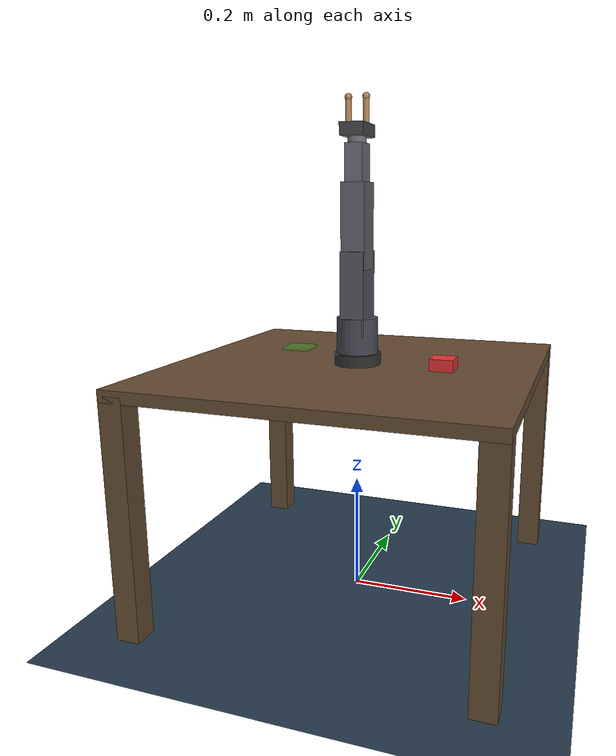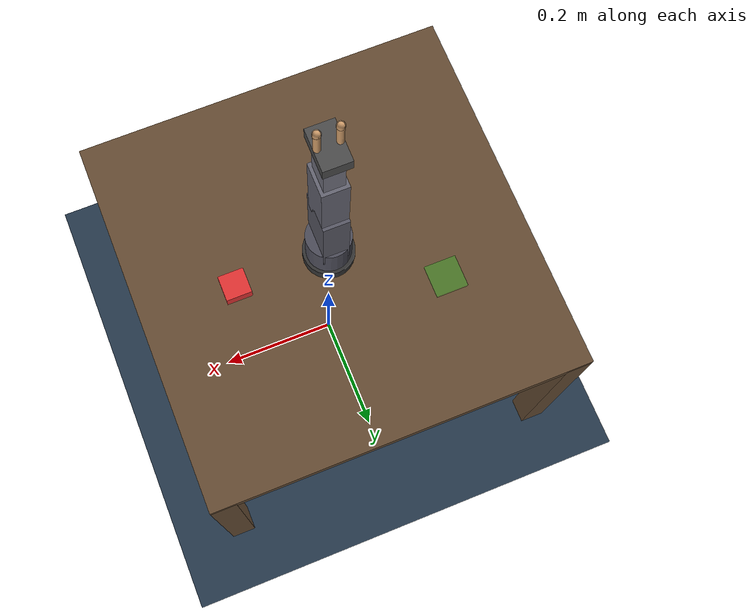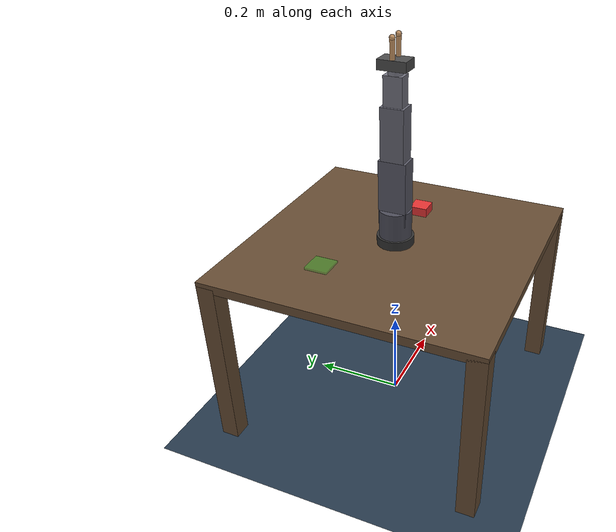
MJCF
<mujoco model="so_arm100_ido">
  <compiler angle="radian" coordinate="local"/>

  <option timestep="0.002" gravity="0 0 -9.81"/>

  <default>
    <joint type="hinge" damping="0.15" armature="0.01" limited="true"/>
    <geom type="mesh" rgba="0.5 0.5 0.5 1"/>
    <motor ctrlrange="-1 1" gear="50"/>
    <position kp="120" kv="15" ctrlrange="-3.14 3.14" gear="50"/>
  </default>

  <asset>
    <!-- Arm links -->
    <mesh name="base_link" file="" scale="1 1 1"/>
    <mesh name="rotation_link" file="" scale="1 1 1"/>
    <mesh name="pitch_link" file="" scale="1 1 1"/>
    <mesh name="elbow_link" file="" scale="1 1 1"/>
    <mesh name="wrist_pitch_link" file="" scale="1 1 1"/>
    <mesh name="wrist_roll_link" file="" scale="1 1 1"/>
    <mesh name="gripper_base" file="" scale="1 1 1"/>
    <mesh name="finger_left" file="" scale="1 1 1"/>
    <mesh name="finger_right" file="" scale="1 1 1"/>

    <texture name="grid" type="2d" builtin="checker" rgb1="0.2 0.3 0.4" rgb2="0.1 0.15 0.2" width="512" height="512"/>
    <material name="grid_mat" texture="grid" texrepeat="8 8" reflectance="0.1"/>
  </asset>

  <visual>
    <headlight diffuse="0.6 0.6 0.6" ambient="0.3 0.3 0.3" specular="0 0 0"/>
    <rgba haze="0.15 0.18 0.21 1"/>
    <global azimuth="120" elevation="-20"/>
  </visual>

  <worldbody>
    <!-- Floor -->
    <geom name="floor" type="plane" size="2 2 0.1" material="grid_mat" friction="0.8 0.05 0.01"/>

    <!-- Lighting -->
    <light name="light1" pos="0.5 0.5 1.5" dir="-0.5 -0.5 -1.5" diffuse="0.8 0.8 0.8"/>
    <light name="light2" pos="-0.5 -0.5 1.5" dir="0.5 0.5 -1.5" diffuse="0.4 0.4 0.4"/>

    <!-- Table surface -->
    <body name="table" pos="0 0 0">
      <geom name="table_top" type="box" size="0.3 0.3 0.01" pos="0 0 0.4" rgba="0.4 0.3 0.2 1"/>
      <geom name="table_leg1" type="box" size="0.02 0.02 0.2" pos="0.28 0.28 0.2" rgba="0.4 0.3 0.2 1"/>
      <geom name="table_leg2" type="box" size="0.02 0.02 0.2" pos="-0.28 0.28 0.2" rgba="0.4 0.3 0.2 1"/>
      <geom name="table_leg3" type="box" size="0.02 0.02 0.2" pos="0.28 -0.28 0.2" rgba="0.4 0.3 0.2 1"/>
      <geom name="table_leg4" type="box" size="0.02 0.02 0.2" pos="-0.28 -0.28 0.2" rgba="0.4 0.3 0.2 1"/>
    </body>

    <!-- SO-ARM100 Robot Arm -->
    <body name="arm_base" pos="0 0 0.41">
      <!-- Base mount (fixed to table) -->
      <geom name="base_geom" type="cylinder" size="0.04 0.02" rgba="0.2 0.2 0.2 1"/>

      <!-- Joint 1: Rotation (base yaw) -->
      <body name="rotation_link" pos="0 0 0.02">
        <joint name="Rotation" type="hinge" axis="0 0 1" range="-3.14 3.14"/>
        <geom name="rotation_geom" type="cylinder" size="0.035 0.03" pos="0 0 0.03" rgba="0.3 0.3 0.35 1"/>

        <!-- Joint 2: Pitch (shoulder) -->
        <body name="pitch_link" pos="0 0 0.06">
          <joint name="Pitch" type="hinge" axis="0 1 0" range="-1.57 1.57"/>
          <geom name="pitch_geom" type="box" size="0.02 0.03 0.07" pos="0 0 0.04" rgba="0.35 0.35 0.4 1"/>

          <!-- Joint 3: Elbow -->
          <body name="elbow_link" pos="0 0 0.11">
            <joint name="Elbow" type="hinge" axis="0 1 0" range="-1.57 1.57"/>
            <geom name="elbow_geom" type="box" size="0.02 0.025 0.07" pos="0 0 0.04" rgba="0.4 0.4 0.45 1"/>

            <!-- Joint 4: Wrist Pitch -->
            <body name="wrist_pitch_link" pos="0 0 0.11">
              <joint name="Wrist_Pitch" type="hinge" axis="0 1 0" range="-1.57 1.57"/>
              <geom name="wrist_pitch_geom" type="box" size="0.015 0.02 0.04" pos="0 0 0.02" rgba="0.45 0.45 0.5 1"/>

              <!-- Joint 5: Wrist Roll -->
              <body name="wrist_roll_link" pos="0 0 0.05">
                <joint name="Wrist_Roll" type="hinge" axis="0 0 1" range="-3.14 3.14"/>
                <geom name="wrist_roll_geom" type="cylinder" size="0.015 0.02" rgba="0.5 0.5 0.55 1"/>

                <!-- Gripper Base -->
                <body name="gripper_base" pos="0 0 0.03">
                  <geom name="gripper_base_geom" type="box" size="0.02 0.03 0.01" rgba="0.3 0.3 0.3 1"/>

                  <!-- Left Finger (sentient) -->
                  <body name="finger_left" pos="0.015 0 0.01">
                    <joint name="Gripper_Left" type="hinge" axis="0 1 0" range="-0.5 0.5"/>
                    <geom name="finger_left_geom" type="capsule" fromto="0 0 0 0 0 0.04" size="0.005" rgba="0.8 0.6 0.4 1"/>
                    <site name="touch_left" type="sphere" size="0.006" pos="0 0 0.04" rgba="0.9 0.7 0.5 0.5"/>
                  </body>

                  <!-- Right Finger (sentient) -->
                  <body name="finger_right" pos="-0.015 0 0.01">
                    <joint name="Gripper_Right" type="hinge" axis="0 1 0" range="-0.5 0.5"/>
                    <geom name="finger_right_geom" type="capsule" fromto="0 0 0 0 0 0.04" size="0.005" rgba="0.8 0.6 0.4 1"/>
                    <site name="touch_right" type="sphere" size="0.006" pos="0 0 0.04" rgba="0.9 0.7 0.5 0.5"/>
                  </body>
                </body>
              </body>
            </body>
          </body>
        </body>
      </body>
    </body>

    <!-- Target cube for pick-and-place -->
    <body name="target_cube" pos="0.15 0 0.41">
      <freejoint/>
      <geom name="cube_geom" type="box" size="0.02 0.02 0.02" rgba="0.9 0.2 0.2 1" friction="1.0 0.05 0.01"/>
    </body>

    <!-- Goal position marker -->
    <body name="goal_marker" pos="-0.15 0.1 0.41">
      <geom name="goal_geom" type="box" size="0.025 0.025 0.005" rgba="0.1 0.9 0.1 0.3"/>
    </body>

    <!-- Camera -->
    <camera name="front_cam" pos="0.5 -0.5 0.8" quat="0.5 0.5 0.5 0.5" fovy="45"/>
    <camera name="side_cam" pos="0.6 0 0.5" quat="0.7 0 0.7 0" fovy="45"/>
    <camera name="top_cam" pos="0 0 1.0" quat="0 0 0 1" fovy="45"/>
  </worldbody>

  <!-- Actuators: ST3215 servos (gear=50 matches 0.05 N·m) -->
  <actuator>
    <position name="Rotation"     joint="Rotation"     kp="120" kv="15" ctrlrange="-3.14 3.14" gear="50"/>
    <position name="Pitch"        joint="Pitch"         kp="120" kv="15" ctrlrange="-1.57 1.57" gear="50"/>
    <position name="Elbow"        joint="Elbow"         kp="100" kv="12" ctrlrange="-1.57 1.57" gear="50"/>
    <position name="Wrist_Pitch"  joint="Wrist_Pitch"   kp="80"  kv="10" ctrlrange="-1.57 1.57" gear="50"/>
    <position name="Wrist_Roll"   joint="Wrist_Roll"    kp="80"  kv="10" ctrlrange="-3.14 3.14" gear="50"/>
    <position name="Gripper_Left"  joint="Gripper_Left"  kp="50"  kv="8"  ctrlrange="-0.5 0.5"   gear="30"/>
    <position name="Gripper_Right" joint="Gripper_Right" kp="50"  kv="8"  ctrlrange="-0.5 0.5"   gear="30"/>
  </actuator>

  <!-- Sensors -->
  <sensor>
    <!-- Joint positions -->
    <jointpos name="jp_Rotation"     joint="Rotation"/>
    <jointpos name="jp_Pitch"        joint="Pitch"/>
    <jointpos name="jp_Elbow"        joint="Elbow"/>
    <jointpos name="jp_Wrist_Pitch"  joint="Wrist_Pitch"/>
    <jointpos name="jp_Wrist_Roll"   joint="Wrist_Roll"/>
    <jointpos name="jp_Gripper_Left"  joint="Gripper_Left"/>
    <jointpos name="jp_Gripper_Right" joint="Gripper_Right"/>

    <!-- Joint velocities -->
    <jointvel name="jv_Rotation"     joint="Rotation"/>
    <jointvel name="jv_Pitch"        joint="Pitch"/>
    <jointvel name="jv_Elbow"        joint="Elbow"/>
    <jointvel name="jv_Wrist_Pitch"  joint="Wrist_Pitch"/>
    <jointvel name="jv_Wrist_Roll"   joint="Wrist_Roll"/>
    <jointvel name="jv_Gripper_Left"  joint="Gripper_Left"/>
    <jointvel name="jv_Gripper_Right" joint="Gripper_Right"/>

    <!-- Touch sensors (sentient finger) -->
    <touch name="touch_left" site="touch_left"/>
    <touch name="touch_right" site="touch_right"/>
  </sensor>

  <!-- Exclusions: prevent self-collision at gripper -->
  <contact>
    <pair geom1="finger_left_geom" geom2="finger_right_geom"/>
    <pair geom1="gripper_base_geom" geom2="finger_left_geom"/>
    <pair geom1="gripper_base_geom" geom2="finger_right_geom"/>
  </contact>
</mujoco>
